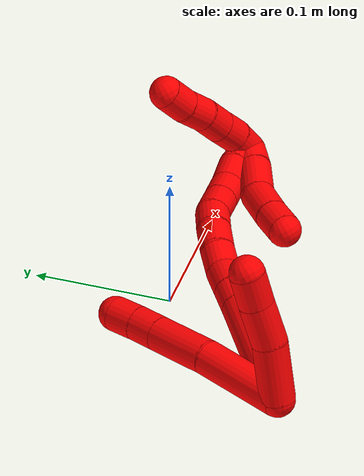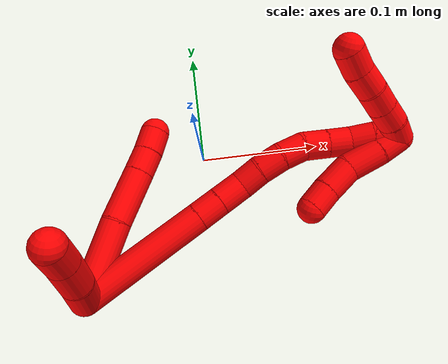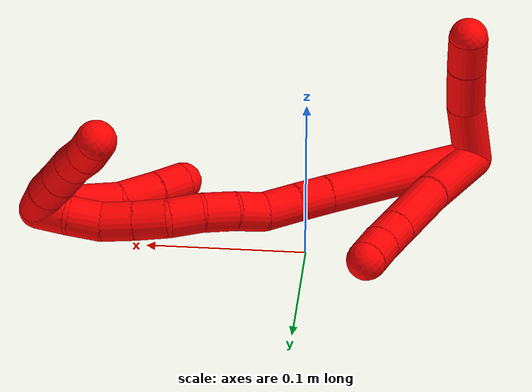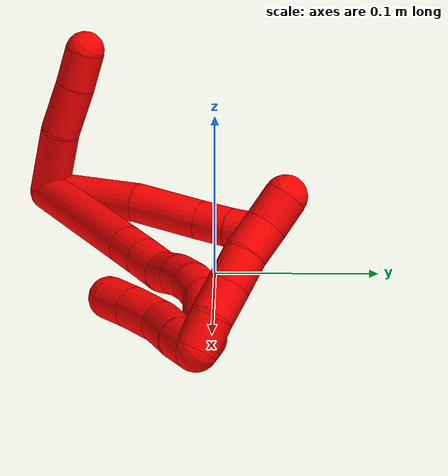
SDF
<sdf version="1.7">
 <world name="default">
  <model name="2">
   <static>0</static>
   <link name="2">
    <collision name="collision-cylinder-e_1_2_8">
     <pose>0.008065 0.022264 0.021499 -0.802859 0.254921 -0.108691</pose>
     <geometry><cylinder><radius>0.0125</radius><length>0.063967</length></cylinder></geometry>
     <surface>
      <friction><ode><mu>1.16</mu><mu2>1.16</mu2><slip1>0</slip1><slip2>0</slip2></ode></friction>
      <contact><ode><kp>1e+06</kp><kd>1</kd><max_vel>0</max_vel><min_depth>0.001</min_depth></ode></contact>
     </surface>
    </collision>
    <visual name="visual-cylinder-e_1_2_8">
     <pose>0.008065 0.022264 0.021499 -0.802859 0.254921 -0.108691</pose>
     <geometry><cylinder><radius>0.0125</radius><length>0.063967</length></cylinder></geometry>
     <material><ambient>1 0 0 1</ambient></material>
    </visual>
    <collision name="collision-cylinder-e_2_8_9">
     <pose>0.02296 0.061784 0.056096 -0.921611 0.305377 -0.152498</pose>
     <geometry><cylinder><radius>0.0125</radius><length>0.04543</length></cylinder></geometry>
     <surface>
      <friction><ode><mu>1.16</mu><mu2>1.16</mu2><slip1>0</slip1><slip2>0</slip2></ode></friction>
      <contact><ode><kp>1e+06</kp><kd>1</kd><max_vel>0</max_vel><min_depth>0.001</min_depth></ode></contact>
     </surface>
    </collision>
    <visual name="visual-cylinder-e_2_8_9">
     <pose>0.02296 0.061784 0.056096 -0.921611 0.305377 -0.152498</pose>
     <geometry><cylinder><radius>0.0125</radius><length>0.04543</length></cylinder></geometry>
     <material><ambient>1 0 0 1</ambient></material>
    </visual>
    <collision name="collision-cylinder-e_3_9_10">
     <pose>0.032749 0.086766 0.075226 -0.907708 0.293273 -0.143849</pose>
     <geometry><cylinder><radius>0.0125</radius><length>0.020478</length></cylinder></geometry>
     <surface>
      <friction><ode><mu>1.16</mu><mu2>1.16</mu2><slip1>0</slip1><slip2>0</slip2></ode></friction>
      <contact><ode><kp>1e+06</kp><kd>1</kd><max_vel>0</max_vel><min_depth>0.001</min_depth></ode></contact>
     </surface>
    </collision>
    <visual name="visual-cylinder-e_3_9_10">
     <pose>0.032749 0.086766 0.075226 -0.907708 0.293273 -0.143849</pose>
     <geometry><cylinder><radius>0.0125</radius><length>0.020478</length></cylinder></geometry>
     <material><ambient>1 0 0 1</ambient></material>
    </visual>
    <collision name="collision-cylinder-e_4_10_6">
     <pose>0.037877 0.102221 0.087325 -0.905451 0.217193 -0.105965</pose>
     <geometry><cylinder><radius>0.0125</radius><length>0.020125</length></cylinder></geometry>
     <surface>
      <friction><ode><mu>1.16</mu><mu2>1.16</mu2><slip1>0</slip1><slip2>0</slip2></ode></friction>
      <contact><ode><kp>1e+06</kp><kd>1</kd><max_vel>0</max_vel><min_depth>0.001</min_depth></ode></contact>
     </surface>
    </collision>
    <visual name="visual-cylinder-e_4_10_6">
     <pose>0.037877 0.102221 0.087325 -0.905451 0.217193 -0.105965</pose>
     <geometry><cylinder><radius>0.0125</radius><length>0.020125</length></cylinder></geometry>
     <material><ambient>1 0 0 1</ambient></material>
    </visual>
    <collision name="collision-cylinder-e_1_2_11">
     <pose>-0.002258 -0.009813 0.019276 0.470905 -0.103997 -0.02497</pose>
     <geometry><cylinder><radius>0.0125</radius><length>0.043495</length></cylinder></geometry>
     <surface>
      <friction><ode><mu>1.16</mu><mu2>1.16</mu2><slip1>0</slip1><slip2>0</slip2></ode></friction>
      <contact><ode><kp>1e+06</kp><kd>1</kd><max_vel>0</max_vel><min_depth>0.001</min_depth></ode></contact>
     </surface>
    </collision>
    <visual name="visual-cylinder-e_1_2_11">
     <pose>-0.002258 -0.009813 0.019276 0.470905 -0.103997 -0.02497</pose>
     <geometry><cylinder><radius>0.0125</radius><length>0.043495</length></cylinder></geometry>
     <material><ambient>1 0 0 1</ambient></material>
    </visual>
    <collision name="collision-cylinder-e_2_11_12">
     <pose>-0.008447 -0.02506 0.053308 0.352816 -0.245017 -0.04389</pose>
     <geometry><cylinder><radius>0.0125</radius><length>0.032418</length></cylinder></geometry>
     <surface>
      <friction><ode><mu>1.16</mu><mu2>1.16</mu2><slip1>0</slip1><slip2>0</slip2></ode></friction>
      <contact><ode><kp>1e+06</kp><kd>1</kd><max_vel>0</max_vel><min_depth>0.001</min_depth></ode></contact>
     </surface>
    </collision>
    <visual name="visual-cylinder-e_2_11_12">
     <pose>-0.008447 -0.02506 0.053308 0.352816 -0.245017 -0.04389</pose>
     <geometry><cylinder><radius>0.0125</radius><length>0.032418</length></cylinder></geometry>
     <material><ambient>1 0 0 1</ambient></material>
    </visual>
    <collision name="collision-cylinder-e_3_12_5">
     <pose>-0.015573 -0.035049 0.078746 0.403057 -0.268434 -0.055159</pose>
     <geometry><cylinder><radius>0.0125</radius><length>0.024087</length></cylinder></geometry>
     <surface>
      <friction><ode><mu>1.16</mu><mu2>1.16</mu2><slip1>0</slip1><slip2>0</slip2></ode></friction>
      <contact><ode><kp>1e+06</kp><kd>1</kd><max_vel>0</max_vel><min_depth>0.001</min_depth></ode></contact>
     </surface>
    </collision>
    <visual name="visual-cylinder-e_3_12_5">
     <pose>-0.015573 -0.035049 0.078746 0.403057 -0.268434 -0.055159</pose>
     <geometry><cylinder><radius>0.0125</radius><length>0.024087</length></cylinder></geometry>
     <material><ambient>1 0 0 1</ambient></material>
    </visual>
    <collision name="collision-cylinder-e_1_2_13">
     <pose>0.040643 0.022228 0.027603 -0.677945 0.853669 -0.317997</pose>
     <geometry><cylinder><radius>0.0125</radius><length>0.107849</length></cylinder></geometry>
     <surface>
      <friction><ode><mu>1.16</mu><mu2>1.16</mu2><slip1>0</slip1><slip2>0</slip2></ode></friction>
      <contact><ode><kp>1e+06</kp><kd>1</kd><max_vel>0</max_vel><min_depth>0.001</min_depth></ode></contact>
     </surface>
    </collision>
    <visual name="visual-cylinder-e_1_2_13">
     <pose>0.040643 0.022228 0.027603 -0.677945 0.853669 -0.317997</pose>
     <geometry><cylinder><radius>0.0125</radius><length>0.107849</length></cylinder></geometry>
     <material><ambient>1 0 0 1</ambient></material>
    </visual>
    <collision name="collision-cylinder-e_2_13_14">
     <pose>0.08945 0.049102 0.060715 -0.700655 0.847649 -0.326774</pose>
     <geometry><cylinder><radius>0.0125</radius><length>0.02178</length></cylinder></geometry>
     <surface>
      <friction><ode><mu>1.16</mu><mu2>1.16</mu2><slip1>0</slip1><slip2>0</slip2></ode></friction>
      <contact><ode><kp>1e+06</kp><kd>1</kd><max_vel>0</max_vel><min_depth>0.001</min_depth></ode></contact>
     </surface>
    </collision>
    <visual name="visual-cylinder-e_2_13_14">
     <pose>0.08945 0.049102 0.060715 -0.700655 0.847649 -0.326774</pose>
     <geometry><cylinder><radius>0.0125</radius><length>0.02178</length></cylinder></geometry>
     <material><ambient>1 0 0 1</ambient></material>
    </visual>
    <collision name="collision-cylinder-e_3_14_15">
     <pose>0.106553 0.058945 0.072085 -0.725405 0.851228 -0.340729</pose>
     <geometry><cylinder><radius>0.0125</radius><length>0.02377</length></cylinder></geometry>
     <surface>
      <friction><ode><mu>1.16</mu><mu2>1.16</mu2><slip1>0</slip1><slip2>0</slip2></ode></friction>
      <contact><ode><kp>1e+06</kp><kd>1</kd><max_vel>0</max_vel><min_depth>0.001</min_depth></ode></contact>
     </surface>
    </collision>
    <visual name="visual-cylinder-e_3_14_15">
     <pose>0.106553 0.058945 0.072085 -0.725405 0.851228 -0.340729</pose>
     <geometry><cylinder><radius>0.0125</radius><length>0.02377</length></cylinder></geometry>
     <material><ambient>1 0 0 1</ambient></material>
    </visual>
    <collision name="collision-cylinder-e_4_15_16">
     <pose>0.122381 0.066387 0.084925 -0.311252 0.754356 -0.124146</pose>
     <geometry><cylinder><radius>0.0125</radius><length>0.020122</length></cylinder></geometry>
     <surface>
      <friction><ode><mu>1.16</mu><mu2>1.16</mu2><slip1>0</slip1><slip2>0</slip2></ode></friction>
      <contact><ode><kp>1e+06</kp><kd>1</kd><max_vel>0</max_vel><min_depth>0.001</min_depth></ode></contact>
     </surface>
    </collision>
    <visual name="visual-cylinder-e_4_15_16">
     <pose>0.122381 0.066387 0.084925 -0.311252 0.754356 -0.124146</pose>
     <geometry><cylinder><radius>0.0125</radius><length>0.020122</length></cylinder></geometry>
     <material><ambient>1 0 0 1</ambient></material>
    </visual>
    <collision name="collision-cylinder-e_5_16_17">
     <pose>0.137716 0.071285 0.098153 -0.401404 0.893643 -0.19434</pose>
     <geometry><cylinder><radius>0.0125</radius><length>0.021671</length></cylinder></geometry>
     <surface>
      <friction><ode><mu>1.16</mu><mu2>1.16</mu2><slip1>0</slip1><slip2>0</slip2></ode></friction>
      <contact><ode><kp>1e+06</kp><kd>1</kd><max_vel>0</max_vel><min_depth>0.001</min_depth></ode></contact>
     </surface>
    </collision>
    <visual name="visual-cylinder-e_5_16_17">
     <pose>0.137716 0.071285 0.098153 -0.401404 0.893643 -0.19434</pose>
     <geometry><cylinder><radius>0.0125</radius><length>0.021671</length></cylinder></geometry>
     <material><ambient>1 0 0 1</ambient></material>
    </visual>
    <collision name="collision-cylinder-e_6_17_18">
     <pose>0.155295 0.076996 0.108796 -0.608142 1.0407 -0.35583</pose>
     <geometry><cylinder><radius>0.0125</radius><length>0.021174</length></cylinder></geometry>
     <surface>
      <friction><ode><mu>1.16</mu><mu2>1.16</mu2><slip1>0</slip1><slip2>0</slip2></ode></friction>
      <contact><ode><kp>1e+06</kp><kd>1</kd><max_vel>0</max_vel><min_depth>0.001</min_depth></ode></contact>
     </surface>
    </collision>
    <visual name="visual-cylinder-e_6_17_18">
     <pose>0.155295 0.076996 0.108796 -0.608142 1.0407 -0.35583</pose>
     <geometry><cylinder><radius>0.0125</radius><length>0.021174</length></cylinder></geometry>
     <material><ambient>1 0 0 1</ambient></material>
    </visual>
    <collision name="collision-cylinder-e_7_18_19">
     <pose>0.174919 0.081016 0.115369 -0.415896 1.3475 -0.333779</pose>
     <geometry><cylinder><radius>0.0125</radius><length>0.021514</length></cylinder></geometry>
     <surface>
      <friction><ode><mu>1.16</mu><mu2>1.16</mu2><slip1>0</slip1><slip2>0</slip2></ode></friction>
      <contact><ode><kp>1e+06</kp><kd>1</kd><max_vel>0</max_vel><min_depth>0.001</min_depth></ode></contact>
     </surface>
    </collision>
    <visual name="visual-cylinder-e_7_18_19">
     <pose>0.174919 0.081016 0.115369 -0.415896 1.3475 -0.333779</pose>
     <geometry><cylinder><radius>0.0125</radius><length>0.021514</length></cylinder></geometry>
     <material><ambient>1 0 0 1</ambient></material>
    </visual>
    <collision name="collision-cylinder-e_8_19_20">
     <pose>0.195417 0.082531 0.119941 -0.226565 1.33009 -0.17797</pose>
     <geometry><cylinder><radius>0.0125</radius><length>0.02061</length></cylinder></geometry>
     <surface>
      <friction><ode><mu>1.16</mu><mu2>1.16</mu2><slip1>0</slip1><slip2>0</slip2></ode></friction>
      <contact><ode><kp>1e+06</kp><kd>1</kd><max_vel>0</max_vel><min_depth>0.001</min_depth></ode></contact>
     </surface>
    </collision>
    <visual name="visual-cylinder-e_8_19_20">
     <pose>0.195417 0.082531 0.119941 -0.226565 1.33009 -0.17797</pose>
     <geometry><cylinder><radius>0.0125</radius><length>0.02061</length></cylinder></geometry>
     <material><ambient>1 0 0 1</ambient></material>
    </visual>
    <collision name="collision-cylinder-e_9_20_21">
     <pose>0.214916 0.082049 0.126656 0.234856 1.13304 0.149794</pose>
     <geometry><cylinder><radius>0.0125</radius><length>0.02096</length></cylinder></geometry>
     <surface>
      <friction><ode><mu>1.16</mu><mu2>1.16</mu2><slip1>0</slip1><slip2>0</slip2></ode></friction>
      <contact><ode><kp>1e+06</kp><kd>1</kd><max_vel>0</max_vel><min_depth>0.001</min_depth></ode></contact>
     </surface>
    </collision>
    <visual name="visual-cylinder-e_9_20_21">
     <pose>0.214916 0.082049 0.126656 0.234856 1.13304 0.149794</pose>
     <geometry><cylinder><radius>0.0125</radius><length>0.02096</length></cylinder></geometry>
     <material><ambient>1 0 0 1</ambient></material>
    </visual>
    <collision name="collision-cylinder-e_10_21_1">
     <pose>0.234227 0.078727 0.132959 0.85678 1.27171 0.650237</pose>
     <geometry><cylinder><radius>0.0125</radius><length>0.02055</length></cylinder></geometry>
     <surface>
      <friction><ode><mu>1.16</mu><mu2>1.16</mu2><slip1>0</slip1><slip2>0</slip2></ode></friction>
      <contact><ode><kp>1e+06</kp><kd>1</kd><max_vel>0</max_vel><min_depth>0.001</min_depth></ode></contact>
     </surface>
    </collision>
    <visual name="visual-cylinder-e_10_21_1">
     <pose>0.234227 0.078727 0.132959 0.85678 1.27171 0.650237</pose>
     <geometry><cylinder><radius>0.0125</radius><length>0.02055</length></cylinder></geometry>
     <material><ambient>1 0 0 1</ambient></material>
    </visual>
    <collision name="collision-cylinder-e_1_1_22">
     <pose>0.235813 0.072938 0.129003 2.60898 -0.873737 -2.08419</pose>
     <geometry><cylinder><radius>0.0125</radius><length>0.021477</length></cylinder></geometry>
     <surface>
      <friction><ode><mu>1.16</mu><mu2>1.16</mu2><slip1>0</slip1><slip2>0</slip2></ode></friction>
      <contact><ode><kp>1e+06</kp><kd>1</kd><max_vel>0</max_vel><min_depth>0.001</min_depth></ode></contact>
     </surface>
    </collision>
    <visual name="visual-cylinder-e_1_1_22">
     <pose>0.235813 0.072938 0.129003 2.60898 -0.873737 -2.08419</pose>
     <geometry><cylinder><radius>0.0125</radius><length>0.021477</length></cylinder></geometry>
     <material><ambient>1 0 0 1</ambient></material>
    </visual>
    <collision name="collision-cylinder-e_2_22_23">
     <pose>0.214767 0.06584 0.115035 2.72032 -0.969033 -2.36992</pose>
     <geometry><cylinder><radius>0.0125</radius><length>0.031086</length></cylinder></geometry>
     <surface>
      <friction><ode><mu>1.16</mu><mu2>1.16</mu2><slip1>0</slip1><slip2>0</slip2></ode></friction>
      <contact><ode><kp>1e+06</kp><kd>1</kd><max_vel>0</max_vel><min_depth>0.001</min_depth></ode></contact>
     </surface>
    </collision>
    <visual name="visual-cylinder-e_2_22_23">
     <pose>0.214767 0.06584 0.115035 2.72032 -0.969033 -2.36992</pose>
     <geometry><cylinder><radius>0.0125</radius><length>0.031086</length></cylinder></geometry>
     <material><ambient>1 0 0 1</ambient></material>
    </visual>
    <collision name="collision-cylinder-e_3_23_24">
     <pose>0.193099 0.055557 0.099285 2.42799 -0.71435 -1.57194</pose>
     <geometry><cylinder><radius>0.0125</radius><length>0.027034</length></cylinder></geometry>
     <surface>
      <friction><ode><mu>1.16</mu><mu2>1.16</mu2><slip1>0</slip1><slip2>0</slip2></ode></friction>
      <contact><ode><kp>1e+06</kp><kd>1</kd><max_vel>0</max_vel><min_depth>0.001</min_depth></ode></contact>
     </surface>
    </collision>
    <visual name="visual-cylinder-e_3_23_24">
     <pose>0.193099 0.055557 0.099285 2.42799 -0.71435 -1.57194</pose>
     <geometry><cylinder><radius>0.0125</radius><length>0.027034</length></cylinder></geometry>
     <material><ambient>1 0 0 1</ambient></material>
    </visual>
    <collision name="collision-cylinder-e_4_24_4">
     <pose>0.178164 0.043384 0.085482 2.40754 -0.638387 -1.42016</pose>
     <geometry><cylinder><radius>0.0125</radius><length>0.020404</length></cylinder></geometry>
     <surface>
      <friction><ode><mu>1.16</mu><mu2>1.16</mu2><slip1>0</slip1><slip2>0</slip2></ode></friction>
      <contact><ode><kp>1e+06</kp><kd>1</kd><max_vel>0</max_vel><min_depth>0.001</min_depth></ode></contact>
     </surface>
    </collision>
    <visual name="visual-cylinder-e_4_24_4">
     <pose>0.178164 0.043384 0.085482 2.40754 -0.638387 -1.42016</pose>
     <geometry><cylinder><radius>0.0125</radius><length>0.020404</length></cylinder></geometry>
     <material><ambient>1 0 0 1</ambient></material>
    </visual>
    <collision name="collision-cylinder-e_1_1_25">
     <pose>0.237765 0.074795 0.142548 0.212835 -0.679102 -0.075429</pose>
     <geometry><cylinder><radius>0.0125</radius><length>0.02</length></cylinder></geometry>
     <surface>
      <friction><ode><mu>1.16</mu><mu2>1.16</mu2><slip1>0</slip1><slip2>0</slip2></ode></friction>
      <contact><ode><kp>1e+06</kp><kd>1</kd><max_vel>0</max_vel><min_depth>0.001</min_depth></ode></contact>
     </surface>
    </collision>
    <visual name="visual-cylinder-e_1_1_25">
     <pose>0.237765 0.074795 0.142548 0.212835 -0.679102 -0.075429</pose>
     <geometry><cylinder><radius>0.0125</radius><length>0.02</length></cylinder></geometry>
     <material><ambient>1 0 0 1</ambient></material>
    </visual>
    <collision name="collision-cylinder-e_2_25_26">
     <pose>0.224042 0.072415 0.156792 0.110487 -0.839338 -0.049337</pose>
     <geometry><cylinder><radius>0.0125</radius><length>0.02</length></cylinder></geometry>
     <surface>
      <friction><ode><mu>1.16</mu><mu2>1.16</mu2><slip1>0</slip1><slip2>0</slip2></ode></friction>
      <contact><ode><kp>1e+06</kp><kd>1</kd><max_vel>0</max_vel><min_depth>0.001</min_depth></ode></contact>
     </surface>
    </collision>
    <visual name="visual-cylinder-e_2_25_26">
     <pose>0.224042 0.072415 0.156792 0.110487 -0.839338 -0.049337</pose>
     <geometry><cylinder><radius>0.0125</radius><length>0.02</length></cylinder></geometry>
     <material><ambient>1 0 0 1</ambient></material>
    </visual>
    <collision name="collision-cylinder-e_3_26_27">
     <pose>0.209347 0.070753 0.170253 0.134823 -0.811519 -0.057992</pose>
     <geometry><cylinder><radius>0.0125</radius><length>0.02</length></cylinder></geometry>
     <surface>
      <friction><ode><mu>1.16</mu><mu2>1.16</mu2><slip1>0</slip1><slip2>0</slip2></ode></friction>
      <contact><ode><kp>1e+06</kp><kd>1</kd><max_vel>0</max_vel><min_depth>0.001</min_depth></ode></contact>
     </surface>
    </collision>
    <visual name="visual-cylinder-e_3_26_27">
     <pose>0.209347 0.070753 0.170253 0.134823 -0.811519 -0.057992</pose>
     <geometry><cylinder><radius>0.0125</radius><length>0.02</length></cylinder></geometry>
     <material><ambient>1 0 0 1</ambient></material>
    </visual>
    <collision name="collision-cylinder-e_4_27_28">
     <pose>0.194584 0.070363 0.183656 -0.081122 -0.849509 0.036707</pose>
     <geometry><cylinder><radius>0.0125</radius><length>0.02</length></cylinder></geometry>
     <surface>
      <friction><ode><mu>1.16</mu><mu2>1.16</mu2><slip1>0</slip1><slip2>0</slip2></ode></friction>
      <contact><ode><kp>1e+06</kp><kd>1</kd><max_vel>0</max_vel><min_depth>0.001</min_depth></ode></contact>
     </surface>
    </collision>
    <visual name="visual-cylinder-e_4_27_28">
     <pose>0.194584 0.070363 0.183656 -0.081122 -0.849509 0.036707</pose>
     <geometry><cylinder><radius>0.0125</radius><length>0.02</length></cylinder></geometry>
     <material><ambient>1 0 0 1</ambient></material>
    </visual>
    <collision name="collision-cylinder-e_5_28_3">
     <pose>0.180632 0.070872 0.197886 0.003364 -0.700088 -0.001228</pose>
     <geometry><cylinder><radius>0.0125</radius><length>0.02</length></cylinder></geometry>
     <surface>
      <friction><ode><mu>1.16</mu><mu2>1.16</mu2><slip1>0</slip1><slip2>0</slip2></ode></friction>
      <contact><ode><kp>1e+06</kp><kd>1</kd><max_vel>0</max_vel><min_depth>0.001</min_depth></ode></contact>
     </surface>
    </collision>
    <visual name="visual-cylinder-e_5_28_3">
     <pose>0.180632 0.070872 0.197886 0.003364 -0.700088 -0.001228</pose>
     <geometry><cylinder><radius>0.0125</radius><length>0.02</length></cylinder></geometry>
     <material><ambient>1 0 0 1</ambient></material>
    </visual>
    <collision name="collision-sphere-3">
     <pose>0.174189 0.070847 0.205533 0 -0 0</pose>
     <geometry><sphere><radius>0.0125</radius></sphere></geometry>
     <surface>
      <friction><ode><mu>1.16</mu><mu2>1.16</mu2><slip1>0</slip1><slip2>0</slip2></ode></friction>
      <contact><ode><kp>1e+06</kp><kd>1</kd><max_vel>0</max_vel><min_depth>0.001</min_depth></ode></contact>
     </surface>
    </collision>
    <visual name="visual-sphere-3">
     <pose>0.174189 0.070847 0.205533 0 -0 0</pose>
     <geometry><sphere><radius>0.0125</radius></sphere></geometry>
     <material><ambient>1 0 0 1</ambient></material>
    </visual>
    <collision name="collision-sphere-28">
     <pose>0.187075 0.070898 0.190238 0 -0 0</pose>
     <geometry><sphere><radius>0.0125</radius></sphere></geometry>
     <surface>
      <friction><ode><mu>1.16</mu><mu2>1.16</mu2><slip1>0</slip1><slip2>0</slip2></ode></friction>
      <contact><ode><kp>1e+06</kp><kd>1</kd><max_vel>0</max_vel><min_depth>0.001</min_depth></ode></contact>
     </surface>
    </collision>
    <visual name="visual-sphere-28">
     <pose>0.187075 0.070898 0.190238 0 -0 0</pose>
     <geometry><sphere><radius>0.0125</radius></sphere></geometry>
     <material><ambient>1 0 0 1</ambient></material>
    </visual>
    <collision name="collision-sphere-27">
     <pose>0.202094 0.069828 0.177074 0 -0 0</pose>
     <geometry><sphere><radius>0.0125</radius></sphere></geometry>
     <surface>
      <friction><ode><mu>1.16</mu><mu2>1.16</mu2><slip1>0</slip1><slip2>0</slip2></ode></friction>
      <contact><ode><kp>1e+06</kp><kd>1</kd><max_vel>0</max_vel><min_depth>0.001</min_depth></ode></contact>
     </surface>
    </collision>
    <visual name="visual-sphere-27">
     <pose>0.202094 0.069828 0.177074 0 -0 0</pose>
     <geometry><sphere><radius>0.0125</radius></sphere></geometry>
     <material><ambient>1 0 0 1</ambient></material>
    </visual>
    <collision name="collision-sphere-26">
     <pose>0.2166 0.071678 0.163431 0 -0 0</pose>
     <geometry><sphere><radius>0.0125</radius></sphere></geometry>
     <surface>
      <friction><ode><mu>1.16</mu><mu2>1.16</mu2><slip1>0</slip1><slip2>0</slip2></ode></friction>
      <contact><ode><kp>1e+06</kp><kd>1</kd><max_vel>0</max_vel><min_depth>0.001</min_depth></ode></contact>
     </surface>
    </collision>
    <visual name="visual-sphere-26">
     <pose>0.2166 0.071678 0.163431 0 -0 0</pose>
     <geometry><sphere><radius>0.0125</radius></sphere></geometry>
     <material><ambient>1 0 0 1</ambient></material>
    </visual>
    <collision name="collision-sphere-25">
     <pose>0.231484 0.073151 0.150154 0 -0 0</pose>
     <geometry><sphere><radius>0.0125</radius></sphere></geometry>
     <surface>
      <friction><ode><mu>1.16</mu><mu2>1.16</mu2><slip1>0</slip1><slip2>0</slip2></ode></friction>
      <contact><ode><kp>1e+06</kp><kd>1</kd><max_vel>0</max_vel><min_depth>0.001</min_depth></ode></contact>
     </surface>
    </collision>
    <visual name="visual-sphere-25">
     <pose>0.231484 0.073151 0.150154 0 -0 0</pose>
     <geometry><sphere><radius>0.0125</radius></sphere></geometry>
     <material><ambient>1 0 0 1</ambient></material>
    </visual>
    <collision name="collision-sphere-4">
     <pose>0.172085 0.037896 0.079399 0 -0 0</pose>
     <geometry><sphere><radius>0.0125</radius></sphere></geometry>
     <surface>
      <friction><ode><mu>1.16</mu><mu2>1.16</mu2><slip1>0</slip1><slip2>0</slip2></ode></friction>
      <contact><ode><kp>1e+06</kp><kd>1</kd><max_vel>0</max_vel><min_depth>0.001</min_depth></ode></contact>
     </surface>
    </collision>
    <visual name="visual-sphere-4">
     <pose>0.172085 0.037896 0.079399 0 -0 0</pose>
     <geometry><sphere><radius>0.0125</radius></sphere></geometry>
     <material><ambient>1 0 0 1</ambient></material>
    </visual>
    <collision name="collision-sphere-24">
     <pose>0.184243 0.048872 0.091564 0 -0 0</pose>
     <geometry><sphere><radius>0.0125</radius></sphere></geometry>
     <surface>
      <friction><ode><mu>1.16</mu><mu2>1.16</mu2><slip1>0</slip1><slip2>0</slip2></ode></friction>
      <contact><ode><kp>1e+06</kp><kd>1</kd><max_vel>0</max_vel><min_depth>0.001</min_depth></ode></contact>
     </surface>
    </collision>
    <visual name="visual-sphere-24">
     <pose>0.184243 0.048872 0.091564 0 -0 0</pose>
     <geometry><sphere><radius>0.0125</radius></sphere></geometry>
     <material><ambient>1 0 0 1</ambient></material>
    </visual>
    <collision name="collision-sphere-23">
     <pose>0.201954 0.062242 0.107005 0 -0 0</pose>
     <geometry><sphere><radius>0.0125</radius></sphere></geometry>
     <surface>
      <friction><ode><mu>1.16</mu><mu2>1.16</mu2><slip1>0</slip1><slip2>0</slip2></ode></friction>
      <contact><ode><kp>1e+06</kp><kd>1</kd><max_vel>0</max_vel><min_depth>0.001</min_depth></ode></contact>
     </surface>
    </collision>
    <visual name="visual-sphere-23">
     <pose>0.201954 0.062242 0.107005 0 -0 0</pose>
     <geometry><sphere><radius>0.0125</radius></sphere></geometry>
     <material><ambient>1 0 0 1</ambient></material>
    </visual>
    <collision name="collision-sphere-22">
     <pose>0.227579 0.069438 0.123064 0 -0 0</pose>
     <geometry><sphere><radius>0.0125</radius></sphere></geometry>
     <surface>
      <friction><ode><mu>1.16</mu><mu2>1.16</mu2><slip1>0</slip1><slip2>0</slip2></ode></friction>
      <contact><ode><kp>1e+06</kp><kd>1</kd><max_vel>0</max_vel><min_depth>0.001</min_depth></ode></contact>
     </surface>
    </collision>
    <visual name="visual-sphere-22">
     <pose>0.227579 0.069438 0.123064 0 -0 0</pose>
     <geometry><sphere><radius>0.0125</radius></sphere></geometry>
     <material><ambient>1 0 0 1</ambient></material>
    </visual>
    <collision name="collision-sphere-1">
     <pose>0.244046 0.076439 0.134942 0 -0 0</pose>
     <geometry><sphere><radius>0.0125</radius></sphere></geometry>
     <surface>
      <friction><ode><mu>1.16</mu><mu2>1.16</mu2><slip1>0</slip1><slip2>0</slip2></ode></friction>
      <contact><ode><kp>1e+06</kp><kd>1</kd><max_vel>0</max_vel><min_depth>0.001</min_depth></ode></contact>
     </surface>
    </collision>
    <visual name="visual-sphere-1">
     <pose>0.244046 0.076439 0.134942 0 -0 0</pose>
     <geometry><sphere><radius>0.0125</radius></sphere></geometry>
     <material><ambient>1 0 0 1</ambient></material>
    </visual>
    <collision name="collision-sphere-21">
     <pose>0.224408 0.081015 0.130977 0 -0 0</pose>
     <geometry><sphere><radius>0.0125</radius></sphere></geometry>
     <surface>
      <friction><ode><mu>1.16</mu><mu2>1.16</mu2><slip1>0</slip1><slip2>0</slip2></ode></friction>
      <contact><ode><kp>1e+06</kp><kd>1</kd><max_vel>0</max_vel><min_depth>0.001</min_depth></ode></contact>
     </surface>
    </collision>
    <visual name="visual-sphere-21">
     <pose>0.224408 0.081015 0.130977 0 -0 0</pose>
     <geometry><sphere><radius>0.0125</radius></sphere></geometry>
     <material><ambient>1 0 0 1</ambient></material>
    </visual>
    <collision name="collision-sphere-11">
     <pose>-0.004515 -0.019627 0.038551 0 -0 0</pose>
     <geometry><sphere><radius>0.0125</radius></sphere></geometry>
     <surface>
      <friction><ode><mu>1.16</mu><mu2>1.16</mu2><slip1>0</slip1><slip2>0</slip2></ode></friction>
      <contact><ode><kp>1e+06</kp><kd>1</kd><max_vel>0</max_vel><min_depth>0.001</min_depth></ode></contact>
     </surface>
    </collision>
    <visual name="visual-sphere-11">
     <pose>-0.004515 -0.019627 0.038551 0 -0 0</pose>
     <geometry><sphere><radius>0.0125</radius></sphere></geometry>
     <material><ambient>1 0 0 1</ambient></material>
    </visual>
    <collision name="collision-sphere-6">
     <pose>0.040046 0.109951 0.093391 0 -0 0</pose>
     <geometry><sphere><radius>0.0125</radius></sphere></geometry>
     <surface>
      <friction><ode><mu>1.16</mu><mu2>1.16</mu2><slip1>0</slip1><slip2>0</slip2></ode></friction>
      <contact><ode><kp>1e+06</kp><kd>1</kd><max_vel>0</max_vel><min_depth>0.001</min_depth></ode></contact>
     </surface>
    </collision>
    <visual name="visual-sphere-6">
     <pose>0.040046 0.109951 0.093391 0 -0 0</pose>
     <geometry><sphere><radius>0.0125</radius></sphere></geometry>
     <material><ambient>1 0 0 1</ambient></material>
    </visual>
    <collision name="collision-sphere-10">
     <pose>0.035709 0.094491 0.081259 0 -0 0</pose>
     <geometry><sphere><radius>0.0125</radius></sphere></geometry>
     <surface>
      <friction><ode><mu>1.16</mu><mu2>1.16</mu2><slip1>0</slip1><slip2>0</slip2></ode></friction>
      <contact><ode><kp>1e+06</kp><kd>1</kd><max_vel>0</max_vel><min_depth>0.001</min_depth></ode></contact>
     </surface>
    </collision>
    <visual name="visual-sphere-10">
     <pose>0.035709 0.094491 0.081259 0 -0 0</pose>
     <geometry><sphere><radius>0.0125</radius></sphere></geometry>
     <material><ambient>1 0 0 1</ambient></material>
    </visual>
    <collision name="collision-sphere-9">
     <pose>0.029789 0.079042 0.069192 0 -0 0</pose>
     <geometry><sphere><radius>0.0125</radius></sphere></geometry>
     <surface>
      <friction><ode><mu>1.16</mu><mu2>1.16</mu2><slip1>0</slip1><slip2>0</slip2></ode></friction>
      <contact><ode><kp>1e+06</kp><kd>1</kd><max_vel>0</max_vel><min_depth>0.001</min_depth></ode></contact>
     </surface>
    </collision>
    <visual name="visual-sphere-9">
     <pose>0.029789 0.079042 0.069192 0 -0 0</pose>
     <geometry><sphere><radius>0.0125</radius></sphere></geometry>
     <material><ambient>1 0 0 1</ambient></material>
    </visual>
    <collision name="collision-sphere-2">
     <geometry><sphere><radius>0.0125</radius></sphere></geometry>
     <surface>
      <friction><ode><mu>1.16</mu><mu2>1.16</mu2><slip1>0</slip1><slip2>0</slip2></ode></friction>
      <contact><ode><kp>1e+06</kp><kd>1</kd><max_vel>0</max_vel><min_depth>0.001</min_depth></ode></contact>
     </surface>
    </collision>
    <visual name="visual-sphere-2">
     <geometry><sphere><radius>0.0125</radius></sphere></geometry>
     <material><ambient>1 0 0 1</ambient></material>
    </visual>
    <collision name="collision-sphere-19">
     <pose>0.185409 0.081979 0.117548 0 -0 0</pose>
     <geometry><sphere><radius>0.0125</radius></sphere></geometry>
     <surface>
      <friction><ode><mu>1.16</mu><mu2>1.16</mu2><slip1>0</slip1><slip2>0</slip2></ode></friction>
      <contact><ode><kp>1e+06</kp><kd>1</kd><max_vel>0</max_vel><min_depth>0.001</min_depth></ode></contact>
     </surface>
    </collision>
    <visual name="visual-sphere-19">
     <pose>0.185409 0.081979 0.117548 0 -0 0</pose>
     <geometry><sphere><radius>0.0125</radius></sphere></geometry>
     <material><ambient>1 0 0 1</ambient></material>
    </visual>
    <collision name="collision-sphere-8">
     <pose>0.01613 0.044527 0.042999 0 -0 0</pose>
     <geometry><sphere><radius>0.0125</radius></sphere></geometry>
     <surface>
      <friction><ode><mu>1.16</mu><mu2>1.16</mu2><slip1>0</slip1><slip2>0</slip2></ode></friction>
      <contact><ode><kp>1e+06</kp><kd>1</kd><max_vel>0</max_vel><min_depth>0.001</min_depth></ode></contact>
     </surface>
    </collision>
    <visual name="visual-sphere-8">
     <pose>0.01613 0.044527 0.042999 0 -0 0</pose>
     <geometry><sphere><radius>0.0125</radius></sphere></geometry>
     <material><ambient>1 0 0 1</ambient></material>
    </visual>
    <collision name="collision-sphere-12">
     <pose>-0.012379 -0.030494 0.068064 0 -0 0</pose>
     <geometry><sphere><radius>0.0125</radius></sphere></geometry>
     <surface>
      <friction><ode><mu>1.16</mu><mu2>1.16</mu2><slip1>0</slip1><slip2>0</slip2></ode></friction>
      <contact><ode><kp>1e+06</kp><kd>1</kd><max_vel>0</max_vel><min_depth>0.001</min_depth></ode></contact>
     </surface>
    </collision>
    <visual name="visual-sphere-12">
     <pose>-0.012379 -0.030494 0.068064 0 -0 0</pose>
     <geometry><sphere><radius>0.0125</radius></sphere></geometry>
     <material><ambient>1 0 0 1</ambient></material>
    </visual>
    <collision name="collision-sphere-5">
     <pose>-0.018767 -0.039603 0.089427 0 -0 0</pose>
     <geometry><sphere><radius>0.0125</radius></sphere></geometry>
     <surface>
      <friction><ode><mu>1.16</mu><mu2>1.16</mu2><slip1>0</slip1><slip2>0</slip2></ode></friction>
      <contact><ode><kp>1e+06</kp><kd>1</kd><max_vel>0</max_vel><min_depth>0.001</min_depth></ode></contact>
     </surface>
    </collision>
    <visual name="visual-sphere-5">
     <pose>-0.018767 -0.039603 0.089427 0 -0 0</pose>
     <geometry><sphere><radius>0.0125</radius></sphere></geometry>
     <material><ambient>1 0 0 1</ambient></material>
    </visual>
    <collision name="collision-sphere-13">
     <pose>0.081285 0.044456 0.055206 0 -0 0</pose>
     <geometry><sphere><radius>0.0125</radius></sphere></geometry>
     <surface>
      <friction><ode><mu>1.16</mu><mu2>1.16</mu2><slip1>0</slip1><slip2>0</slip2></ode></friction>
      <contact><ode><kp>1e+06</kp><kd>1</kd><max_vel>0</max_vel><min_depth>0.001</min_depth></ode></contact>
     </surface>
    </collision>
    <visual name="visual-sphere-13">
     <pose>0.081285 0.044456 0.055206 0 -0 0</pose>
     <geometry><sphere><radius>0.0125</radius></sphere></geometry>
     <material><ambient>1 0 0 1</ambient></material>
    </visual>
    <collision name="collision-sphere-14">
     <pose>0.097614 0.053748 0.066224 0 -0 0</pose>
     <geometry><sphere><radius>0.0125</radius></sphere></geometry>
     <surface>
      <friction><ode><mu>1.16</mu><mu2>1.16</mu2><slip1>0</slip1><slip2>0</slip2></ode></friction>
      <contact><ode><kp>1e+06</kp><kd>1</kd><max_vel>0</max_vel><min_depth>0.001</min_depth></ode></contact>
     </surface>
    </collision>
    <visual name="visual-sphere-14">
     <pose>0.097614 0.053748 0.066224 0 -0 0</pose>
     <geometry><sphere><radius>0.0125</radius></sphere></geometry>
     <material><ambient>1 0 0 1</ambient></material>
    </visual>
    <collision name="collision-sphere-15">
     <pose>0.115491 0.064141 0.077945 0 -0 0</pose>
     <geometry><sphere><radius>0.0125</radius></sphere></geometry>
     <surface>
      <friction><ode><mu>1.16</mu><mu2>1.16</mu2><slip1>0</slip1><slip2>0</slip2></ode></friction>
      <contact><ode><kp>1e+06</kp><kd>1</kd><max_vel>0</max_vel><min_depth>0.001</min_depth></ode></contact>
     </surface>
    </collision>
    <visual name="visual-sphere-15">
     <pose>0.115491 0.064141 0.077945 0 -0 0</pose>
     <geometry><sphere><radius>0.0125</radius></sphere></geometry>
     <material><ambient>1 0 0 1</ambient></material>
    </visual>
    <collision name="collision-sphere-16">
     <pose>0.129271 0.068632 0.091904 0 -0 0</pose>
     <geometry><sphere><radius>0.0125</radius></sphere></geometry>
     <surface>
      <friction><ode><mu>1.16</mu><mu2>1.16</mu2><slip1>0</slip1><slip2>0</slip2></ode></friction>
      <contact><ode><kp>1e+06</kp><kd>1</kd><max_vel>0</max_vel><min_depth>0.001</min_depth></ode></contact>
     </surface>
    </collision>
    <visual name="visual-sphere-16">
     <pose>0.129271 0.068632 0.091904 0 -0 0</pose>
     <geometry><sphere><radius>0.0125</radius></sphere></geometry>
     <material><ambient>1 0 0 1</ambient></material>
    </visual>
    <collision name="collision-sphere-17">
     <pose>0.146161 0.073937 0.104403 0 -0 0</pose>
     <geometry><sphere><radius>0.0125</radius></sphere></geometry>
     <surface>
      <friction><ode><mu>1.16</mu><mu2>1.16</mu2><slip1>0</slip1><slip2>0</slip2></ode></friction>
      <contact><ode><kp>1e+06</kp><kd>1</kd><max_vel>0</max_vel><min_depth>0.001</min_depth></ode></contact>
     </surface>
    </collision>
    <visual name="visual-sphere-17">
     <pose>0.146161 0.073937 0.104403 0 -0 0</pose>
     <geometry><sphere><radius>0.0125</radius></sphere></geometry>
     <material><ambient>1 0 0 1</ambient></material>
    </visual>
    <collision name="collision-sphere-18">
     <pose>0.164429 0.080054 0.11319 0 -0 0</pose>
     <geometry><sphere><radius>0.0125</radius></sphere></geometry>
     <surface>
      <friction><ode><mu>1.16</mu><mu2>1.16</mu2><slip1>0</slip1><slip2>0</slip2></ode></friction>
      <contact><ode><kp>1e+06</kp><kd>1</kd><max_vel>0</max_vel><min_depth>0.001</min_depth></ode></contact>
     </surface>
    </collision>
    <visual name="visual-sphere-18">
     <pose>0.164429 0.080054 0.11319 0 -0 0</pose>
     <geometry><sphere><radius>0.0125</radius></sphere></geometry>
     <material><ambient>1 0 0 1</ambient></material>
    </visual>
    <collision name="collision-sphere-20">
     <pose>0.205424 0.083082 0.122335 0 -0 0</pose>
     <geometry><sphere><radius>0.0125</radius></sphere></geometry>
     <surface>
      <friction><ode><mu>1.16</mu><mu2>1.16</mu2><slip1>0</slip1><slip2>0</slip2></ode></friction>
      <contact><ode><kp>1e+06</kp><kd>1</kd><max_vel>0</max_vel><min_depth>0.001</min_depth></ode></contact>
     </surface>
    </collision>
    <visual name="visual-sphere-20">
     <pose>0.205424 0.083082 0.122335 0 -0 0</pose>
     <geometry><sphere><radius>0.0125</radius></sphere></geometry>
     <material><ambient>1 0 0 1</ambient></material>
    </visual>
    <inertial>
     <pose>0.104635 0.047101 0.082634 0 -0 0</pose>
     <mass>0.75</mass>
     <inertia>
      <ixx>0.000103</ixx>
      <ixy>0</ixy>
      <ixz>0</ixz>
      <iyy>0.000137</iyy>
      <iyz>0</iyz>
      <izz>-0.000128</izz>
     </inertia>
    </inertial>
   </link>
   <pose>-0.102105 -0.108689 0.017784 -0.683121 0.224926 -0.165577</pose>
  </model>
 </world>
</sdf>
